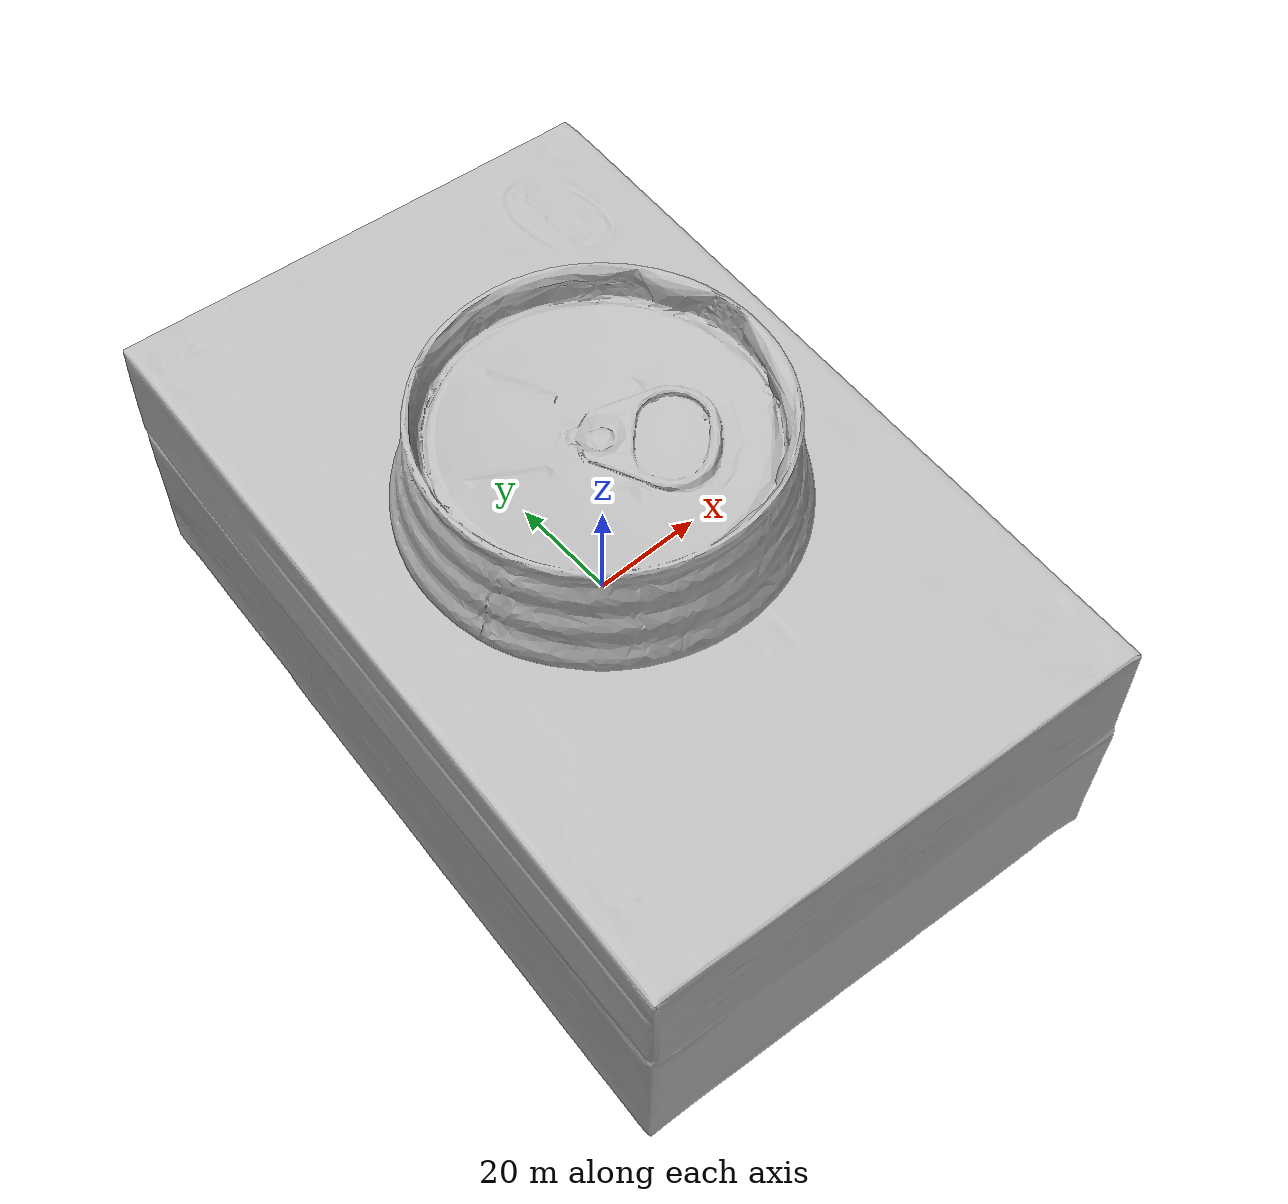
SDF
<?xml version="1.0" ?>
<sdf version="1.4">
  <world name="default">
    <light name="light1" type="point">
      <pose>0 0 1 0 0 0</pose>
      <diffuse>3 3 3 1</diffuse>
      <specular>3 3 3 1</specular>
    </light>
    <light name="light2" type="point">
      <pose>0 0.5 2 0 0 0</pose>
      <diffuse>1 1 1 1</diffuse>
      <specular>1 1 1 1</specular>
    </light>
    <light name="light3" type="point">
      <pose>0 0.5 2 0 0 0</pose>
      <diffuse>3 3 3 1</diffuse>
      <specular>3 3 3 1</specular>
    </light>
    <scene>
      <ambient>0.7 0.7 0.7</ambient>
    </scene>
    <model name="box1">
      <link name="link_box1">
        <collision name="default">
          <geometry>
            <mesh>
              <uri>model://realsense_box/collision_meshes/collision.obj</uri>
              <scale>1.0 1.0 1.0</scale>
            </mesh>
          </geometry>
          <surface>
            <friction>
              <ode>
                <mu>0.5</mu>
                <mu2>0.5</mu2>
              </ode>
            </friction>
            <contact>
              <ode>
                <max_vel>0</max_vel>
                <min_depth>0.0001</min_depth>
                <kp>1e8</kp>
              </ode>
            </contact>
          </surface>
        </collision>
        <visual name="default">
          <geometry>
            <mesh>
              <uri>model://realsense_box/visual_meshes/visual.dae</uri>
              <scale>1.0 1.0 1.0</scale>
            </mesh>
          </geometry>
        </visual>
        <inertial>
          <mass>0.5864310264587402</mass>
          <pose>4.0744838770478964e-05 8.587492629885674e-05 -2.4153792764991522e-05 -0.00012602841398420584 -0.00635893997803049 0.005012323893530406</pose>
          <inertia>
            <ixx>0.00055784633</ixx>
            <iyy>0.0011643406</iyy>
            <izz>0.0014403972</izz>
            <ixy>0</ixy>
            <ixz>0</ixz>
            <iyz>0</iyz>
          </inertia>
        </inertial>
      </link>
      <pose>-0.04804808646440506 -0.32376354932785034 0.027316007763147354 -2.2388979354293956e-08 -1.2956990242823744e-08 -1.6577080481035191</pose>
    </model>
    <model name="box2">
      <link name="link_box2">
        <collision name="default">
          <geometry>
            <mesh>
              <uri>model://wooden_puzzle1/collision_meshes/collision.obj</uri>
              <scale>1.0 1.0 1.0</scale>
            </mesh>
          </geometry>
          <surface>
            <friction>
              <ode>
                <mu>0.5</mu>
                <mu2>0.5</mu2>
              </ode>
            </friction>
            <contact>
              <ode>
                <max_vel>0</max_vel>
                <min_depth>0.0001</min_depth>
                <kp>1e8</kp>
              </ode>
            </contact>
          </surface>
        </collision>
        <visual name="default">
          <geometry>
            <mesh>
              <uri>model://wooden_puzzle1/visual_meshes/visual.dae</uri>
              <scale>1.0 1.0 1.0</scale>
            </mesh>
          </geometry>
        </visual>
        <inertial>
          <mass>0.029293930158019066</mass>
          <pose>-0.00017350679263472557 7.972260209498927e-05 -9.191554272547364e-05 -0.07784356807478612 -0.26361316070226715 -0.552870069934309</pose>
          <inertia>
            <ixx>5.5269634e-06</ixx>
            <iyy>5.4205675e-06</iyy>
            <izz>5.4852344e-06</izz>
            <ixy>0</ixy>
            <ixz>0</ixz>
            <iyz>0</iyz>
          </inertia>
        </inertial>
      </link>
      <pose>-0.0828840509057045 -0.13403548300266266 0.016801981255412102 0.010516535706321268 -0.009457426788020903 -0.017635281397058847</pose>
    </model>
    <model name="box3">
      <link name="link_box3">
        <collision name="default">
          <geometry>
            <mesh>
              <uri>model://wooden_puzzle2/collision_meshes/collision.obj</uri>
              <scale>1.0 1.0 1.0</scale>
            </mesh>
          </geometry>
          <surface>
            <friction>
              <ode>
                <mu>0.5</mu>
                <mu2>0.5</mu2>
              </ode>
            </friction>
            <contact>
              <ode>
                <max_vel>0</max_vel>
                <min_depth>0.0001</min_depth>
                <kp>1e8</kp>
              </ode>
            </contact>
          </surface>
        </collision>
        <visual name="default">
          <geometry>
            <mesh>
              <uri>model://wooden_puzzle2/visual_meshes/visual.dae</uri>
              <scale>1.0 1.0 1.0</scale>
            </mesh>
          </geometry>
        </visual>
        <inertial>
          <mass>0.046210821717977524</mass>
          <pose>2.7402538762544282e-05 4.9976635636994615e-05 6.587122334167361e-05 -0.19202726218652877 0.6112834530151037 -0.6338736448019666</pose>
          <inertia>
            <ixx>8.590097e-06</ixx>
            <iyy>8.826809e-06</iyy>
            <izz>8.7012395e-06</izz>
            <ixy>0</ixy>
            <ixz>0</ixz>
            <iyz>0</iyz>
          </inertia>
        </inertial>
      </link>
      <pose>0.0724269226193428 0.0943712592124939 0.01691773533821106 0.020848429540341388 0.0007211918593513682 -2.9175509239160156</pose>
    </model>
    <model name="can1">
      <link name="link_can1">
        <collision name="default">
          <geometry>
            <mesh>
              <uri>model://pepsi/collision_meshes/collision.obj</uri>
              <scale>1.0 1.0 1.0</scale>
            </mesh>
          </geometry>
          <surface>
            <friction>
              <ode>
                <mu>0.5</mu>
                <mu2>0.5</mu2>
              </ode>
            </friction>
            <contact>
              <ode>
                <max_vel>0</max_vel>
                <min_depth>0.0001</min_depth>
                <kp>1e8</kp>
              </ode>
            </contact>
          </surface>
        </collision>
        <visual name="default">
          <geometry>
            <mesh>
              <uri>model://pepsi/visual_meshes/visual.dae</uri>
              <scale>1.0 1.0 1.0</scale>
            </mesh>
          </geometry>
        </visual>
        <inertial>
          <mass>0.38708412647247314</mass>
          <pose>-7.5590331107378e-05 2.9931279641459696e-05 -0.0003384356386959553 -0.0010677624110939459 -0.0021735778616849013 0.5673701652335379</pose>
          <inertia>
            <ixx>0.00077114574</ixx>
            <iyy>0.0007705839</iyy>
            <izz>0.00016412749</izz>
            <ixy>0</ixy>
            <ixz>0</ixz>
            <iyz>0</iyz>
          </inertia>
        </inertial>
      </link>
      <pose>-0.016143789514899254 0.0890594869852066 0.07449628412723541 -1.902394549515833e-05 2.162785840981629e-06 -1.5008784459731435</pose>
    </model>
    <model name="can2">
      <link name="link_can2">
        <collision name="default">
          <geometry>
            <mesh>
              <uri>model://redbull/collision_meshes/collision.obj</uri>
              <scale>1.0 1.0 1.0</scale>
            </mesh>
          </geometry>
          <surface>
            <friction>
              <ode>
                <mu>0.5</mu>
                <mu2>0.5</mu2>
              </ode>
            </friction>
            <contact>
              <ode>
                <max_vel>0</max_vel>
                <min_depth>0.0001</min_depth>
                <kp>1e8</kp>
              </ode>
            </contact>
          </surface>
        </collision>
        <visual name="default">
          <geometry>
            <mesh>
              <uri>model://redbull/visual_meshes/visual.dae</uri>
              <scale>1.0 1.0 1.0</scale>
            </mesh>
          </geometry>
        </visual>
        <inertial>
          <mass>0.22841571271419525</mass>
          <pose>-2.2126563635538332e-05 -0.00012659550702665 -0.0006860988214612007 0.001137008533125708 -0.010800935482360328 0.5858832407094048</pose>
          <inertia>
            <ixx>0.00021475992</ixx>
            <iyy>0.00021494119</iyy>
            <izz>0.00012744407</izz>
            <ixy>0</ixy>
            <ixz>0</ixz>
            <iyz>0</iyz>
          </inertia>
        </inertial>
      </link>
      <pose>-0.06701920926570892 0.21691717207431793 0.046385642141103745 -0.010489488697503276 0.007260156031546064 1.200983157569964</pose>
    </model>
    <physics type="ode">
      <max_contacts>50</max_contacts>
      <ode>
        <solver>
          <type>quick</type>
          <iters>75</iters>
        </solver>
        <constraints>
          <contact_max_correcting_vel>0</contact_max_correcting_vel>
          <contact_surface_layer>0</contact_surface_layer>
        </constraints>
      </ode>
    </physics>
  </world>
</sdf>
